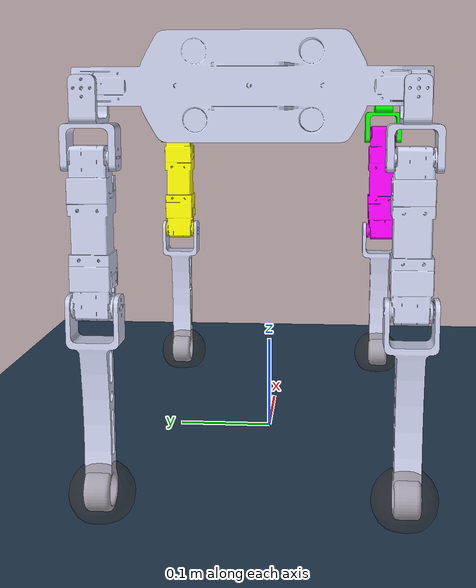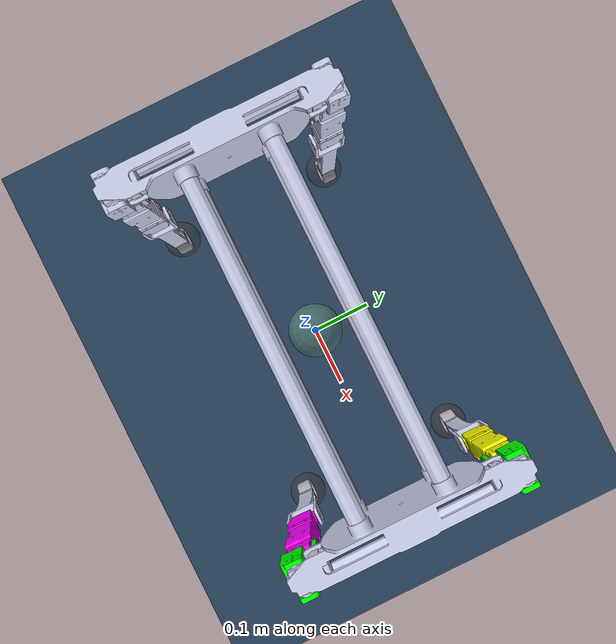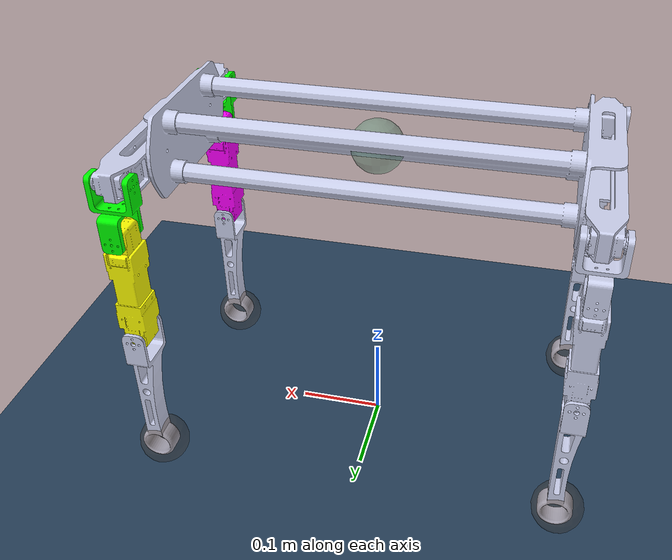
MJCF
<mujoco model="cerbrus bot">
  <include file="cerbrus.xml"/>

  <statistic center="0 0 0.1" extent="0.8"/>

  <visual>
    <headlight diffuse="0.6 0.6 0.6" ambient="0.3 0.3 0.3" specular="0 0 0"/>
    <rgba haze="0.15 0.25 0.35 1"/>
    <global azimuth="120" elevation="-20"/>
  </visual>

  <asset>
    <texture type="skybox" builtin="gradient" rgb1="0.3 0.5 0.7" rgb2="0 0 0" width="512" height="3072"/>
    <texture type="2d" name="groundplane" builtin="checker" mark="edge" rgb1="0.2 0.3 0.4" rgb2="0.1 0.2 0.3"
      markrgb="0.8 0.8 0.8" width="300" height="300"/>
    <material name="groundplane" texture="groundplane" texuniform="true" texrepeat="5 5" reflectance="0.2"/>
  </asset>

  <worldbody>
    <light pos="0 0 10" dir="0 0 -1" directional="true"/>
    <geom name="floor" size="0 0 10.5" type="plane" material="groundplane"/>
  </worldbody>

  <worldbody> <!-- This line is for indicating the straight line that should be followed -->
    <geom name="trace_line" size="10 0.01 0.01" type="plane" rgba="1 0 0 0.7"/>
  </worldbody>

  <worldbody> <!-- This line is for indicating positive x direction-->
    <geom name="x" size="0.1 0.1 0.1" type="plane" rgba="1 1 0 1" pos="5 0 0"/>
  </worldbody>

</mujoco>

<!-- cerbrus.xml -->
<!-- Check the solref and solimp and sometimes change body position if there is bouncing -->

<mujoco model="cerbrus_urdf">
  <compiler angle="radian" meshdir="/home/mandred/cerbrus_ws/src/cerbrus_description/meshes/" autolimits="true"/>
  <option cone="elliptic" impratio="100"/>

  <asset>
    <!-- Meshes -->
    <mesh name="base_link" file="base_link.STL" />
    <mesh name="front_left_b_link" file="front_left_b_link.STL" />
    <mesh name="front_left_ul_link" file="front_left_ul_link.STL" />
    <mesh name="front_left_ll_link" file="front_left_ll_link.STL" />
    <mesh name="front_right_b_link" file="front_right_b_link.STL" />
    <mesh name="front_right_ul_link" file="front_right_ul_link.STL" />
    <mesh name="front_right_ll_link" file="front_right_ll_link.STL" />
    <mesh name="back_left_b_link" file="back_left_b_link.STL" />
    <mesh name="back_left_ul_link" file="back_left_ul_link.STL" />
    <mesh name="back_left_ll_link" file="back_left_ll_link.STL" />
    <mesh name="back_right_b_link" file="back_right_b_link.STL" />
    <mesh name="back_right_ul_link" file="back_right_ul_link.STL" />
    <mesh name="back_right_ll_link" file="back_right_ll_link.STL" />
  </asset>

  <worldbody>
    <!-- Base Body -->
    <body name="base_link" pos="0 0 0.38" euler="0 0 0">
    <site name="imu_site" pos="0 0 0" size=".03 .03 .03" type="ellipsoid" rgba="0.4 0.6 0.5 0.5"/>
    <freejoint/>
      <inertial pos="0 0 0" mass="1.2203" diaginertia="0.0021324 0.0090463 0.01083"/>
      <geom type="mesh" mesh="base_link" rgba="0.8 0.82 0.93 1" euler="0.035 0 0"/>

      <!-- Front Left Leg -->
      <body name="front_left_b_link" pos="0.24 0.16 -0.06">
        <inertial pos="0.0001 -0.0235 0.029" quat="0.5 0.5 -0.5 0.5" mass="0.025843" diaginertia="1.02e-05 9.01e-06 9.01e-06"/>
        <joint name="front_left_b_joint" pos="0 -0.0228 0.058" axis="1 0 0" range="-1.57 1.57" damping="2"/>
        <geom type="mesh" mesh="front_left_b_link" rgba="0 1 0 1"/>

        <body name="front_left_ul_link" pos="0 -0.005 0">
          <inertial pos="0.0001 -0.0181 -0.065" quat="0.7071 0 0 0.7071" mass="0.1273" diaginertia="2.93e-05 2.73e-05 1.53e-05"/>
          <joint name="front_left_ul_joint" pos="0 -0.02 0" axis="0 1 0" range="-1.57 1.57" damping="2"/>
          <geom type="mesh" mesh="front_left_ul_link" rgba="1 1 0 1"/>

          <body name="front_left_ll_link" pos="0 0.0047 -0.13">
            <inertial pos="0.0023 -0.0231 -0.0886" mass="0.0644" diaginertia="0.000202 0.0002 1.15e-05"/>
            <joint name="front_left_ll_joint" pos="0 -0.02 0" axis="0 1 0" range="-1.57 1.57" damping="2"/>
            <geom type="mesh" mesh="front_left_ll_link" rgba="0.8 0.82 0.93 1" priority="1" solimp="0.015 1 0.0009" condim="6"
            friction="1 0.02 0.01" solref="0.005 1000"/>
            <site name="front_left_leg_site" pos="0 -0.025 -0.17" size=".03 .03 .03" type="ellipsoid" rgba="0.3 0.2 0.1 0.3"/>
          </body>

        </body>
      </body>

      <!-- Front Right Leg -->
      <body name="front_right_b_link" pos="0.24 -0.16 -0.06">
        <inertial pos="0.0001 0.0237 0.029" quat="0.5 0.5 -0.5 0.5" mass="0.025843" diaginertia="1.02e-05 9.01e-06 9.01e-06"/>
        <joint name="front_right_b_joint" pos="0 0.0228 0.058" axis="1 0 0" range="-1.57 1.57" damping="2"/>
        <geom type="mesh" mesh="front_right_b_link" rgba="0 1 0 1"/>

        <body name="front_right_ul_link" pos="0 0.005 0">
          <inertial pos="0.0001 0.0191 -0.065" quat="0.7071 0 0 0.7071" mass="0.1273" diaginertia="2.93e-05 2.73e-05 1.53e-05"/>
          <joint name="front_right_ul_joint" pos="0 0.02 0" axis="0 1 0" range="-1.57 1.57" damping="2"/>
          <geom type="mesh" mesh="front_right_ul_link" rgba="1 0 1 1"/>

          <body name="front_right_ll_link" pos="0 -0.0027 -0.13">
            <inertial pos="0.0023 0.0231 -0.0886" mass="0.0644" diaginertia="0.000202 0.0002 1.15e-05"/>
            <joint name="front_right_ll_joint" pos="0 0.02 0" axis="0 1 0" range="-1.57 1.57" damping="2"/>
            <geom type="mesh" mesh="front_right_ll_link" rgba="0.8 0.82 0.93 1" priority="1" solimp="0.015 1 0.0009" condim="6"
            friction="1 0.02 0.01" solref="0.005 1000"/>
            <site name="front_right_leg_site" pos="0 0.025 -0.17" size=".03 .03 .03" type="ellipsoid" rgba="0.3 0.2 0.1 0.3"/>
          </body>
        </body>
      </body>

      <!-- Back Left Leg -->
      <body name="back_left_b_link" pos="-0.24 0.16 -0.06">
        <inertial pos="0.0001 -0.0235 0.029" quat="0.5 0.5 -0.5 0.5" mass="0.025843" diaginertia="1.02e-05 9.01e-06 9.01e-06"/>
        <joint name="back_left_b_joint" pos="0 -0.0228 0.058" axis="1 0 0" range="-1.57 1.57" damping="2"/>
        <geom type="mesh" mesh="back_left_b_link" rgba="0.8 0.82 0.93 1"/>

        <body name="back_left_ul_link" pos="0 -0.005 0">
          <inertial pos="0.0001 -0.0181 -0.065" quat="0.7071 0 0 0.7071" mass="0.1273" diaginertia="2.93e-05 2.73e-05 1.53e-05"/>
          <joint name="back_left_ul_joint" pos="0 -0.02 0" axis="0 1 0" range="-1.57 1.57" damping="2"/>
          <geom type="mesh" mesh="back_left_ul_link" rgba="0.8 0.82 0.93 1"/>

          <body name="back_left_ll_link" pos="0 0.0047 -0.13">
            <inertial pos="0.0023 -0.0231 -0.0886" mass="0.0644" diaginertia="0.000202 0.0002 1.15e-05"/>
            <joint name="back_left_ll_joint" pos="0 -0.02 0" axis="0 1 0" range="-1.57 1.57" damping="2"/>
            <geom type="mesh" mesh="back_left_ll_link" rgba="0.8 0.82 0.93 1" priority="1" solimp="0.015 1 0.0009" condim="6"
            friction="1 0.02 0.01" solref="0.005 1000"/>
            <site name="back_left_leg_site" pos="0 -0.025 -0.17" size=".03 .03 .03" type="ellipsoid" rgba="0.3 0.2 0.1 0.3"/>
          </body>
        </body>
      </body>

      <!-- Back Right Leg -->
      <body name="back_right_b_link" pos="-0.24 -0.16 -0.06">
        <inertial pos="0.0001 0.0235 0.029" quat="0.5 0.5 -0.5 0.5" mass="0.025843" diaginertia="1.02e-05 9.01e-06 9.01e-06"/>
        <joint name="back_right_b_joint" pos="0 0.0228 0.058" axis="1 0 0" range="-1.57 1.57" damping="2"/>
        <geom type="mesh" mesh="back_right_b_link" rgba="0.8 0.82 0.93 1"/>

        <body name="back_right_ul_link" pos="0 0.005 0">
          <inertial pos="0.0001 0.0181 -0.065" quat="0.7071 0 0 0.7071" mass="0.1273" diaginertia="2.93e-05 2.73e-05 1.53e-05"/>
          <joint name="back_right_ul_joint" pos="0 0.02 0" axis="0 1 0" range="-1.57 1.57" damping="2"/>
          <geom type="mesh" mesh="back_right_ul_link" rgba="0.8 0.82 0.93 1"/>

          <body name="back_right_ll_link" pos="0 -0.0047 -0.13">
            <inertial pos="0.0023 0.0231 -0.0886" mass="0.0644" diaginertia="0.000202 0.0002 1.15e-05"/>
            <joint name="back_right_ll_joint" pos="0 0.02 0" axis="0 1 0" range="-1.57 1.57" damping="2"/>
            <geom type="mesh" mesh="back_right_ll_link" rgba="0.8 0.82 0.93 1" priority="1" solimp="0.015 1 0.0009" condim="6"
            friction="1 0.02 0.01" solref="0.005 1000"/>
            <site name="back_right_leg_site" pos="0 0.025 -0.17" size=".03 .03 .03" type="ellipsoid" rgba="0.3 0.2 0.1 0.3"/>
          </body>
        </body>
      </body>
    </body>
  </worldbody>

  <actuator>
    <!-- Front Left -->
    <position name="FL_hip" joint="front_left_b_joint" kp="20" ctrlrange="0 1.57"/>
    <position name="FL_thigh" joint="front_left_ul_joint" kp="20" ctrlrange="-1.57 1.57"/>
    <position name="FL_calf" joint="front_left_ll_joint" kp="20" ctrlrange="-1.57 1.57"/>

    <!-- Front Right -->
    <position name="FR_hip" joint="front_right_b_joint" kp="20" ctrlrange="-1.57 0"/>
    <position name="FR_thigh" joint="front_right_ul_joint" kp="20" ctrlrange="-1.57 1.57"/>
    <position name="FR_calf" joint="front_right_ll_joint" kp="20" ctrlrange="-1.57 1.57"/>

    <!-- Back Left -->
    <position name="RL_hip" joint="back_left_b_joint" kp="20" ctrlrange="0 1.57"/>
    <position name="RL_thigh" joint="back_left_ul_joint" kp="20" ctrlrange="-1.57 1.57"/>
    <position name="RL_calf" joint="back_left_ll_joint" kp="20" ctrlrange="-1.57 1.57"/>

    <!-- Back Right -->
    <position name="RR_hip" joint="back_right_b_joint" kp="20" ctrlrange="-1.57 0"/>
    <position name="RR_thigh" joint="back_right_ul_joint" kp="20" ctrlrange="-1.57 1.57"/>
    <position name="RR_calf" joint="back_right_ll_joint" kp="20" ctrlrange="-1.57 1.57"/>
  </actuator>

  <sensor>
    <!-- Touch Sensors for leg contact -->
    <touch name="back_right_touch" site="back_right_leg_site"/>
    <touch name="back_left_touch" site="back_left_leg_site"/>
    <touch name="front_right_touch" site="front_right_leg_site"/>
    <touch name="front_left_touch" site="front_left_leg_site"/>

    <!-- IMU Raw Acc Gyro and Mag data-->
    <accelerometer name="acc_imu" site="imu_site"/>
    <gyro name="gyro_imu" site="imu_site"/>
    <magnetometer name="mag_imu" site="imu_site"/>

    <!-- Better Estimate of Center of robot pos and rotation in quat-->
    <framepos name="fp" objtype="site" objname="imu_site"/>
    <framequat name="fq" objtype="site" objname="imu_site"/>

  </sensor>

</mujoco>
